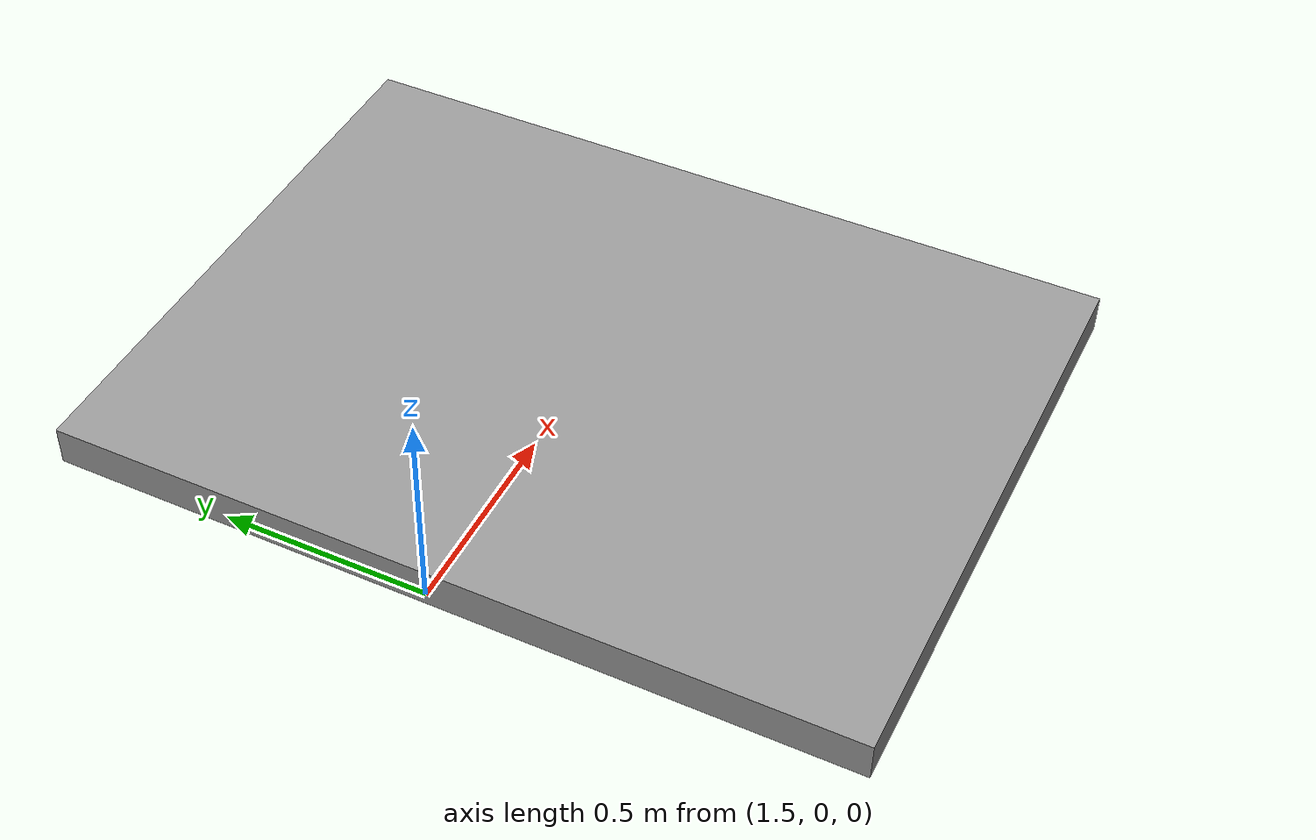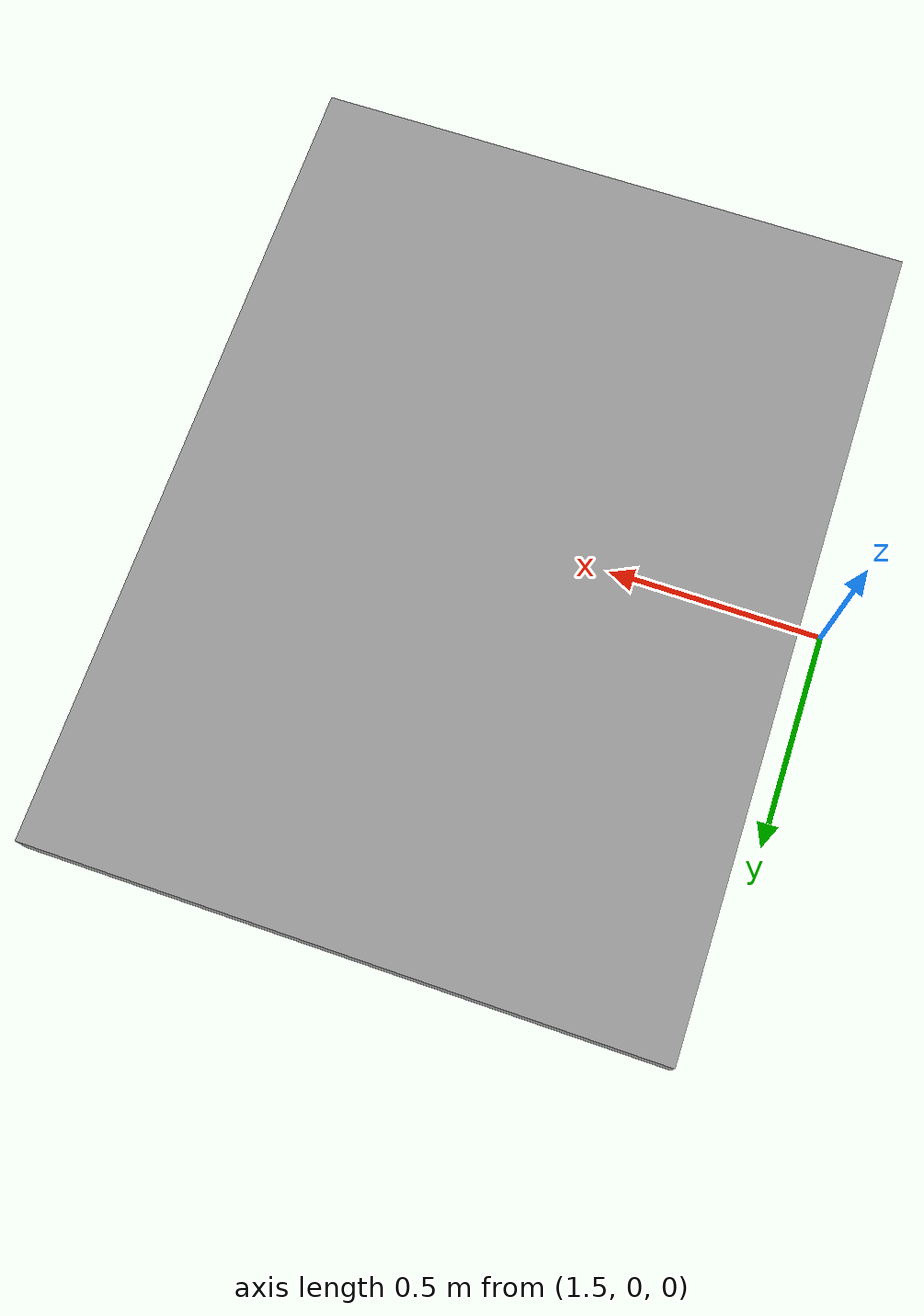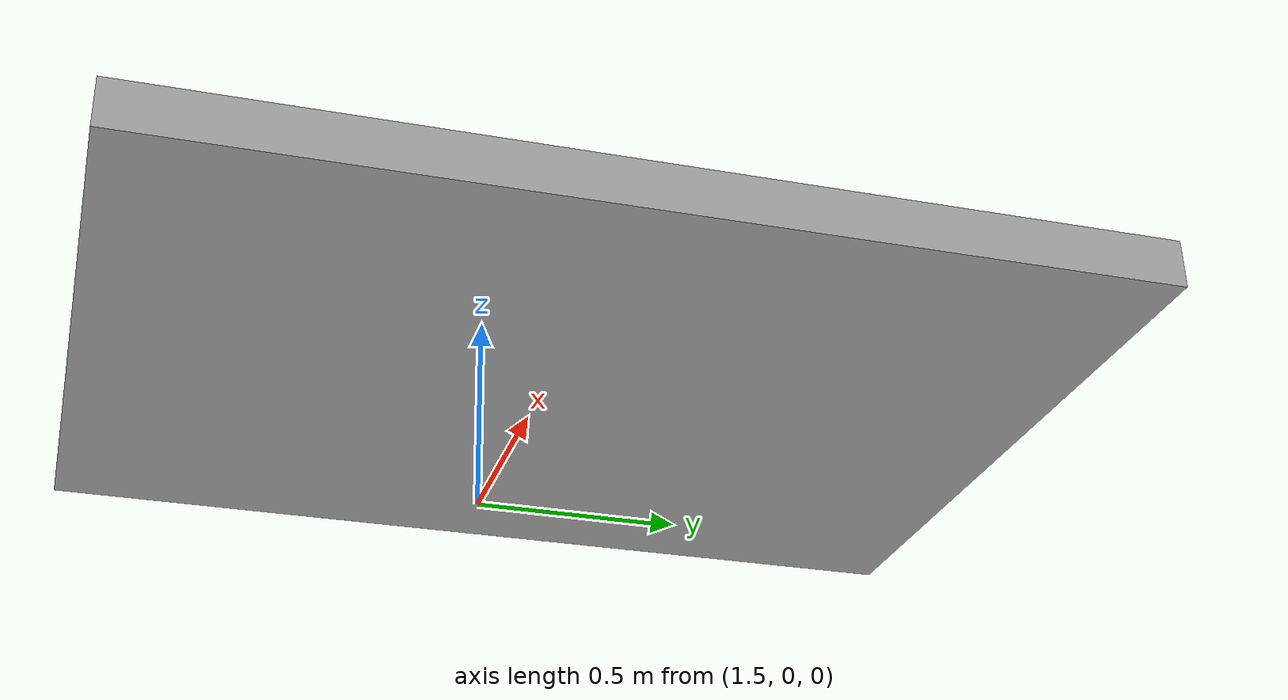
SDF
<?xml version='1.0'?>
<sdf version='1.6'>
    <model name='floor'>
        <static>true</static>
        <link name='floor'>
            <collision name='collision'>
                <geometry>
                    <box>
                        <size>1.5 2 0.1</size> <!-- Width, Depth, Height -->
                    </box>
                </geometry>
            </collision>
            <visual name='visual'>
                <geometry>
                    <box>
                        <size>1.5 2 0.1</size> <!-- Same dimensions for visual representation -->
                    </box>
                </geometry>
                <material>
                    <ambient>0.6 0.6 0.6 1</ambient>  <!-- Optional: Adjust the floor color -->
                </material>
            </visual>
            <!-- Optionally, position the floor slightly above or at the origin -->
            <pose>2.3 0 -0.05 0 0 0</pose> <!-- Adjust Z to place the floor; here, it's half the box's height to align its top with the world's origin -->
        </link>
    </model>
</sdf>
